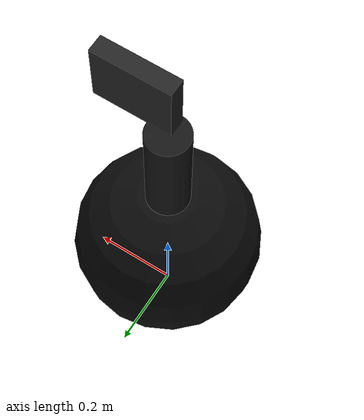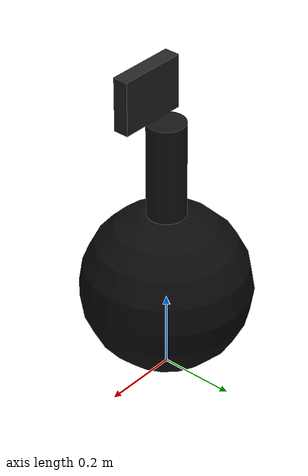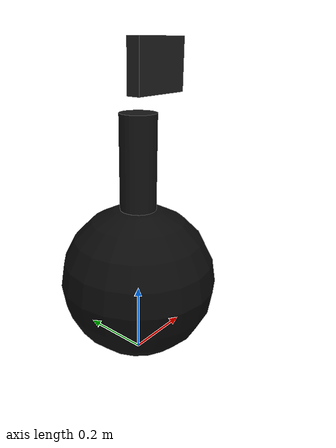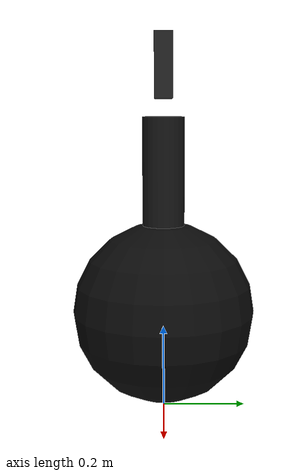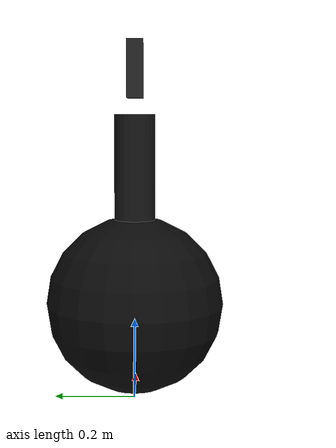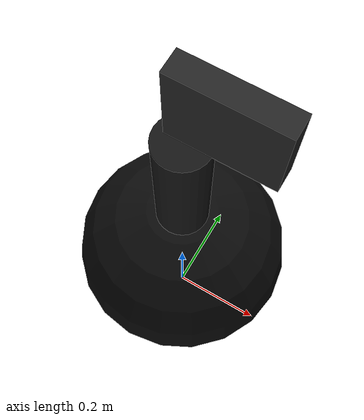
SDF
<?xml version="1.0" ?>
<sdf version="1.9">
  <model name="target_buoy_black">
    <!-- Simulation colors must match perception class colors. -->
    <static>true</static>
    <link name="link">
      <collision name="body_collision">
        <pose>0 0 0.24 0 0 0</pose>
        <geometry>
          <sphere>
            <radius>0.22</radius>
          </sphere>
        </geometry>
      </collision>
      <collision name="mast_collision">
        <pose>0 0 0.54 0 0 0</pose>
        <geometry>
          <cylinder>
            <radius>0.05</radius>
            <length>0.34</length>
          </cylinder>
        </geometry>
      </collision>
      <visual name="body_visual">
        <pose>0 0 0.24 0 0 0</pose>
        <geometry>
          <sphere>
            <radius>0.22</radius>
          </sphere>
        </geometry>
        <material>
          <ambient>0.04 0.04 0.04 1</ambient>
          <diffuse>0.04 0.04 0.04 1</diffuse>
          <specular>0.02 0.02 0.02 1</specular>
        </material>
      </visual>
      <visual name="mast_visual">
        <pose>0 0 0.54 0 0 0</pose>
        <geometry>
          <cylinder>
            <radius>0.05</radius>
            <length>0.34</length>
          </cylinder>
        </geometry>
        <material>
          <ambient>0.08 0.08 0.08 1</ambient>
          <diffuse>0.08 0.08 0.08 1</diffuse>
        </material>
      </visual>
      <visual name="flag_visual">
        <pose>0.07 0 0.82 0 0 0</pose>
        <geometry>
          <box>
            <size>0.18 0.04 0.14</size>
          </box>
        </geometry>
        <material>
          <ambient>0.14 0.14 0.14 1</ambient>
          <diffuse>0.14 0.14 0.14 1</diffuse>
        </material>
      </visual>
    </link>
  </model>
</sdf>
